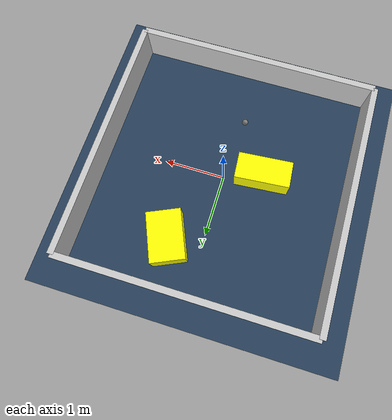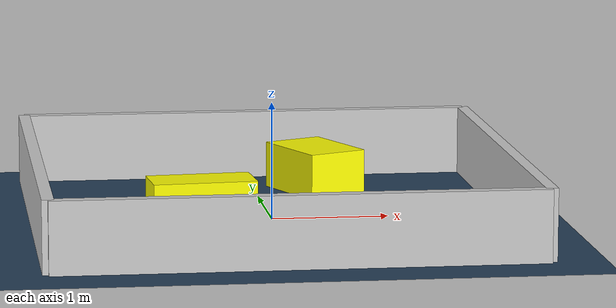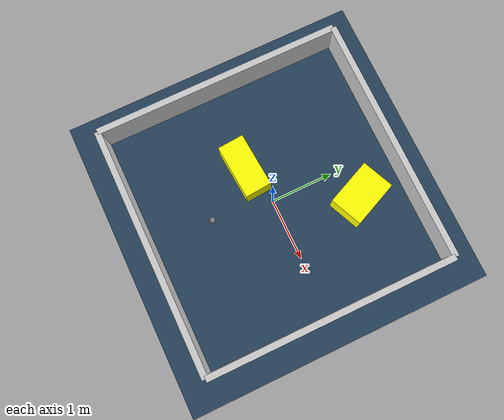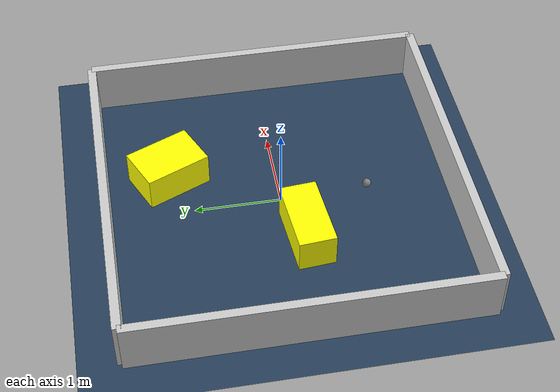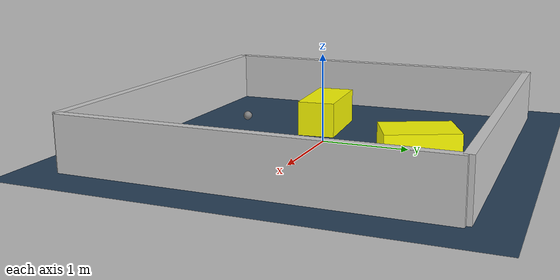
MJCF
<?xml version="1.0" ?>
<mujoco model="generated_environment">
  <option timestep="0.01" integrator="RK4" cone="elliptic"/>
  <default>
    <geom density="1"/>
  </default>
  <asset>
    <texture builtin="gradient" height="3072" rgb1="0.3 0.5 0.7" rgb2="0 0 0" type="skybox" width="512"/>
    <texture builtin="checker" height="300" mark="edge" markrgb="0.8 0.8 0.8" name="groundplane" rgb1="0.2 0.3 0.4" rgb2="0.1 0.2 0.3" type="2d" width="300"/>
    <material name="groundplane" reflectance="0.2" texrepeat="5 5" texture="groundplane" texuniform="true"/>
    <material name="robot" rgba="0.0 1.0 0.0 1"/>
  </asset>
  <worldbody>
    <light dir="0 0 -1" directional="true" pos="0 0 1.5"/>
    <geom condim="4" friction="1.0 0.005 0.001" material="groundplane" name="floor" size="0 0 0.05" type="plane"/>
    <body name="walls">
      <geom name="wall_1" condim="4" pos="-2.0 0.0 0.3" rgba="0.800000011920929 0.800000011920929 0.800000011920929 1.0" size="0.05 2.0 0.3" type="box"/>
      <geom name="wall_2" condim="4" pos="2.0 0.0 0.3" rgba="0.800000011920929 0.800000011920929 0.800000011920929 1.0" size="0.05 2.0 0.3" type="box"/>
      <geom name="wall_3" condim="4" pos="0.0 -2.0 0.3" rgba="0.800000011920929 0.800000011920929 0.800000011920929 1.0" size="2.0 0.05 0.3" type="box"/>
      <geom name="wall_4" condim="4" pos="0.0 2.0 0.3" rgba="0.800000011920929 0.800000011920929 0.800000011920929 1.0" size="2.0 0.05 0.3" type="box"/>
    </body>
    <body name="robot">
      <joint name="joint_x" type="slide" pos="0 0 0" axis="1 0 0"/>
      <joint name="joint_y" type="slide" pos="0 0 0" axis="0 1 0"/>
      <geom name="robot" type="sphere" pos="-0.08995654913604145 -0.9901308109413068 0.2" size="0.05" mass="5." friction="1.0 0.005 0.0001" condim="4"/>
      <site name="sensor_ball"/>
    </body>
    <body name="obstacle_1_movable">
      <geom name="obstacle_1_movable" condim="4" pos="-0.615818244255582 -0.19249612330985943 0.2" euler="0 0 274.6509042001856" friction="1.0 0.005 0.001" rgba="1 1 0 1" size="0.21358506263208993 0.44173953193152315 0.2" type="box" mass="0.1"/>
      <joint type="free"/>
    </body>
    <body name="obstacle_2_movable">
      <geom name="obstacle_2_movable" condim="4" pos="0.539383398092387 1.241504612417819 0.2" euler="0 0 113.95808279844258" friction="1.0 0.005 0.001" rgba="1 1 0 1" size="0.3899902647960149 0.2715284144917943 0.2" type="box" mass="0.1"/>
      <joint type="free"/>
    </body>
  </worldbody>
  <actuator>
    <motor name="actuator_x" joint="joint_x" gear="1" ctrlrange="-1 1"/>
    <motor name="actuator_y" joint="joint_y" gear="1" ctrlrange="-1 1"/>
  </actuator>
</mujoco>
